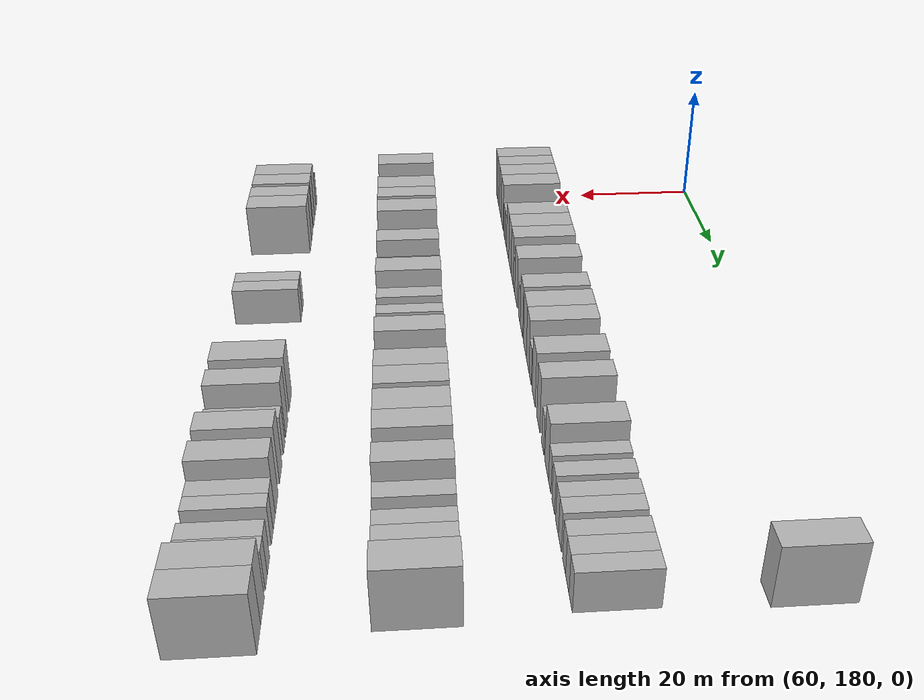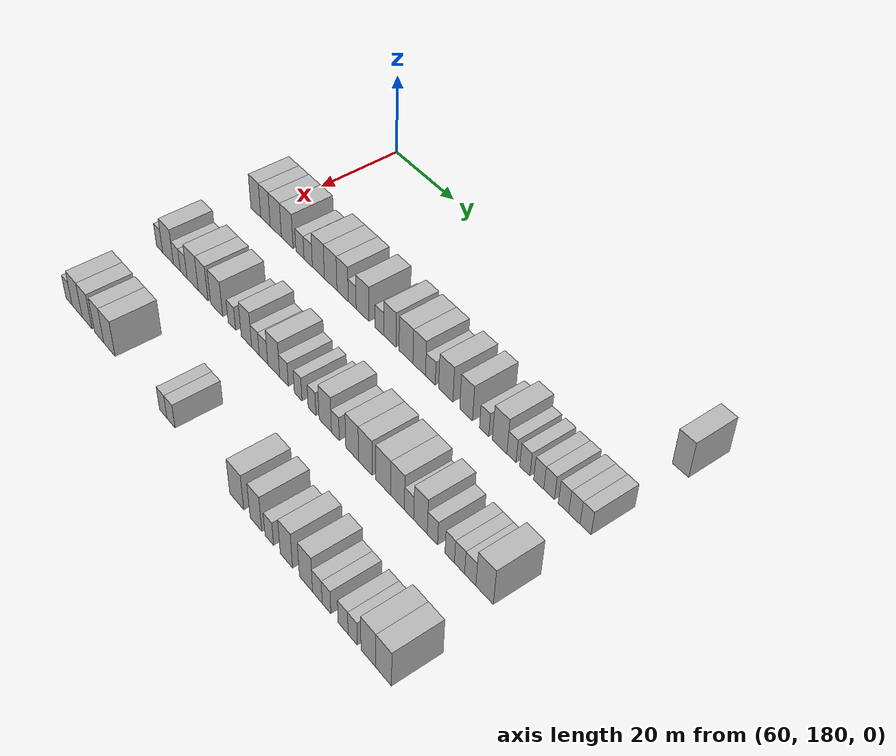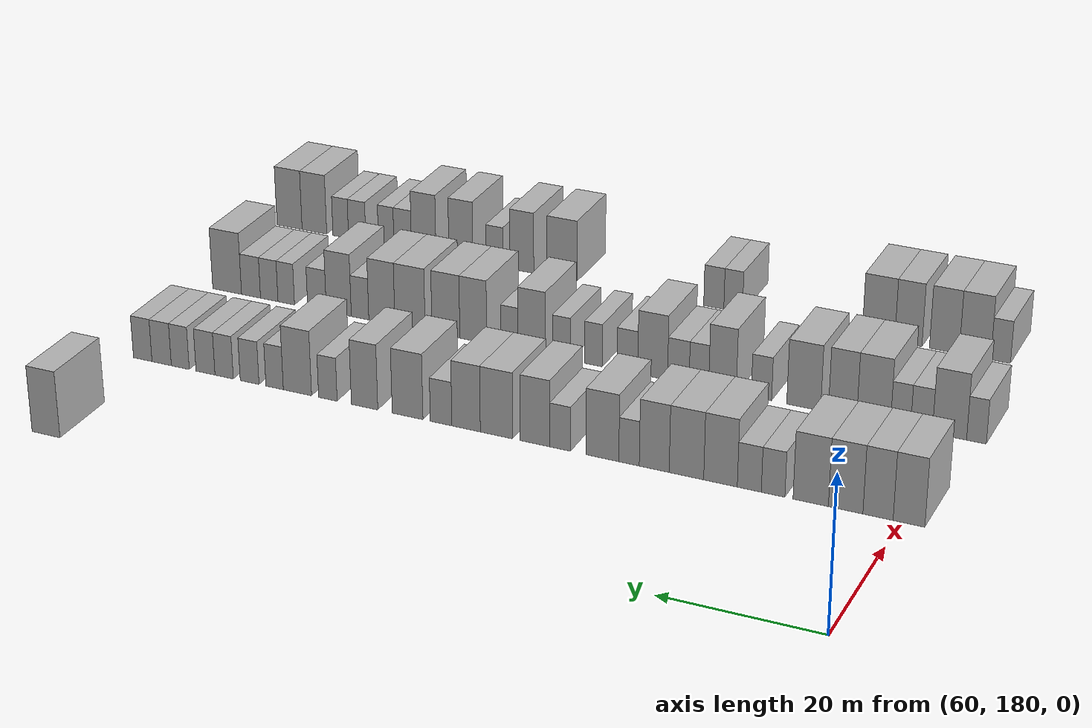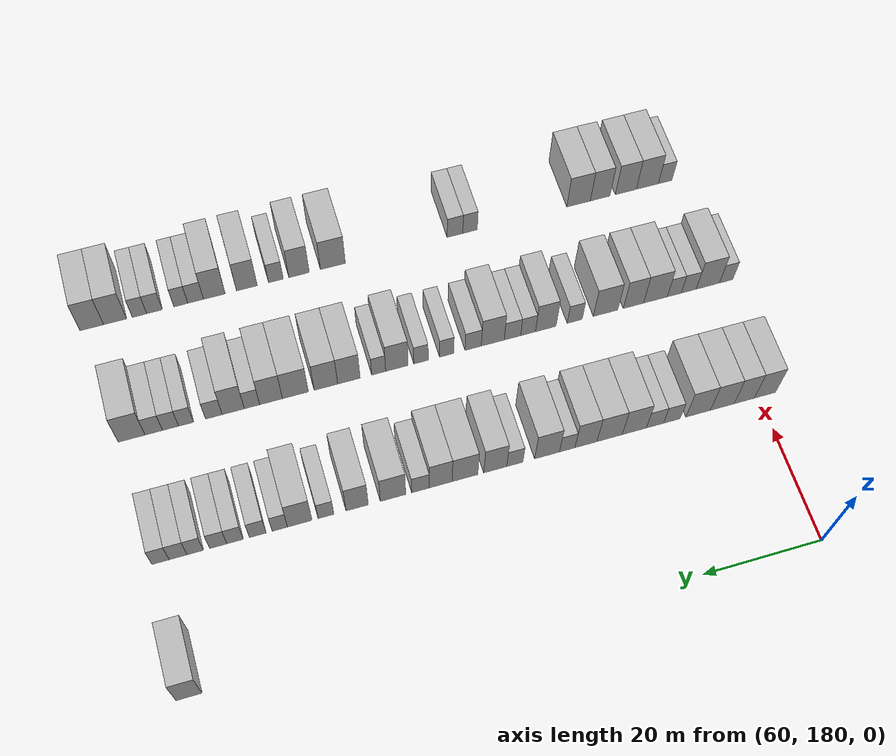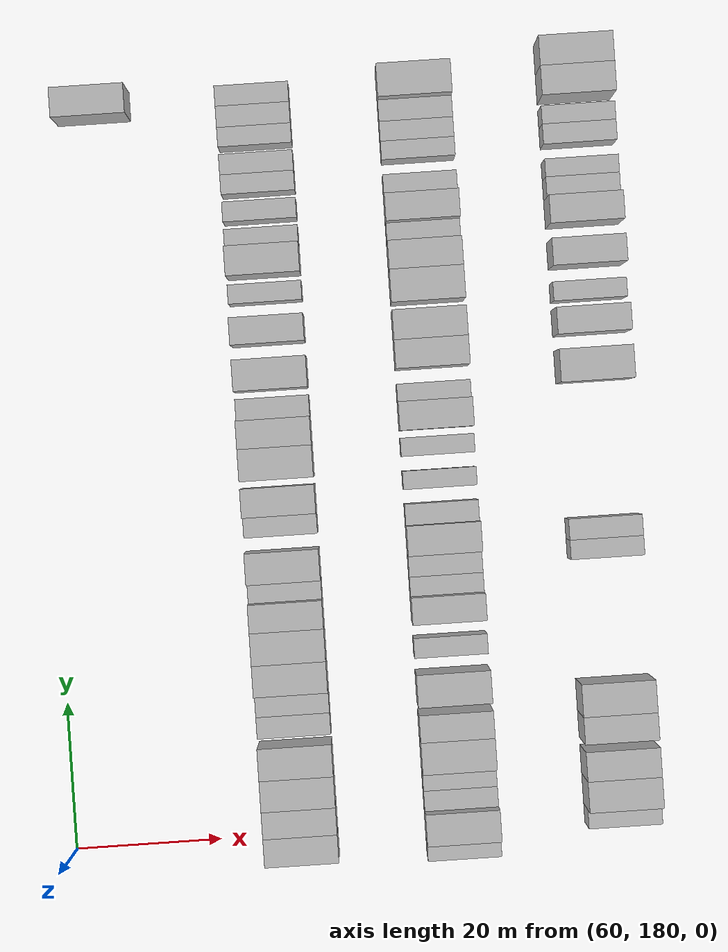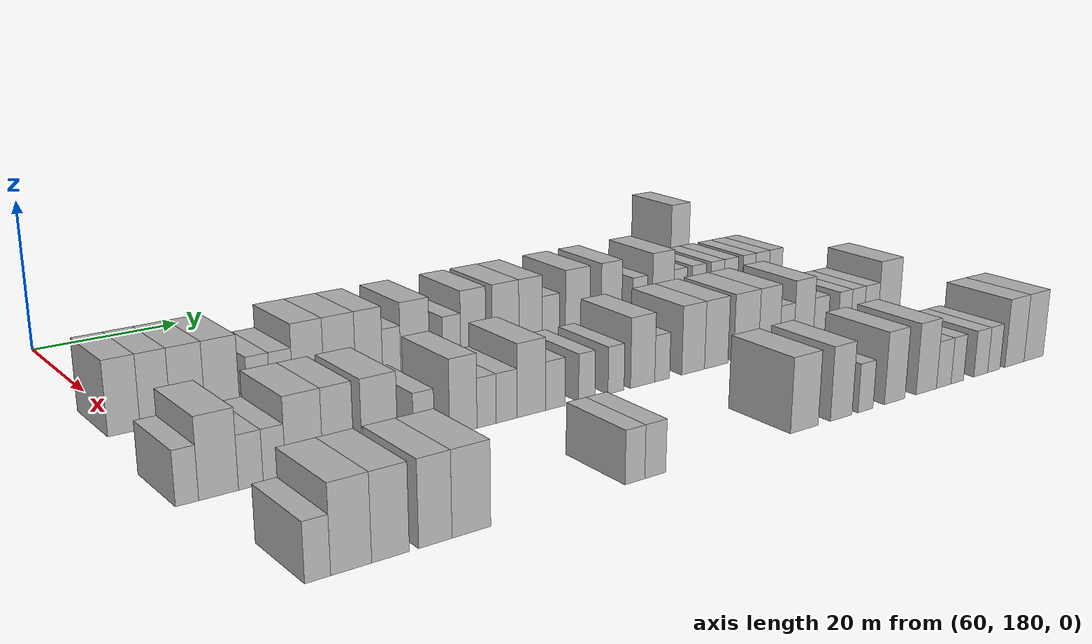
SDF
<sdf version="1.6">
 <world name="default">
  <model name="building_548">
   <static>1</static>
   <pose>69.0000 281.4334 0 0.000000 0.000000 0.000000</pose>
   <link name="link">
    <pose>0 0 4.50 0 0 0</pose>
    <collision name="collision"><geometry><box><size>10.0000 4.0031 9.0000</size></box></geometry></collision>
    <visual name="visual">
     <cast_shadows>0</cast_shadows>
     <geometry><box><size>10.0000 4.0031 9.0000</size></box></geometry>
     <material>
      <script>
       <uri>model://HANNAS_wall/materials/scripts</uri>
       <uri>model://HANNAS_wall/materials/textures</uri>
       <name>vrc/HANNAS_wall</name>
      </script>
     </material>
    </visual>
   </link>
  </model>
  <model name="building_706">
   <static>1</static>
   <pose>91.0000 179.0462 0 0.000000 0.000000 0.000000</pose>
   <link name="link">
    <pose>0 0 4.50 0 0 0</pose>
    <collision name="collision"><geometry><box><size>10.0000 3.7843 9.0000</size></box></geometry></collision>
    <visual name="visual">
     <cast_shadows>0</cast_shadows>
     <geometry><box><size>10.0000 3.7843 9.0000</size></box></geometry>
     <material>
      <script>
       <uri>model://HANNAS_wall/materials/scripts</uri>
       <uri>model://HANNAS_wall/materials/textures</uri>
       <name>vrc/HANNAS_wall</name>
      </script>
     </material>
    </visual>
   </link>
  </model>
  <model name="building_707">
   <static>1</static>
   <pose>91.0000 182.7528 0 0.000000 0.000000 0.000000</pose>
   <link name="link">
    <pose>0 0 4.50 0 0 0</pose>
    <collision name="collision"><geometry><box><size>10.0000 3.6289 9.0000</size></box></geometry></collision>
    <visual name="visual">
     <cast_shadows>0</cast_shadows>
     <geometry><box><size>10.0000 3.6289 9.0000</size></box></geometry>
     <material>
      <script>
       <uri>model://HANNAS_wall/materials/scripts</uri>
       <uri>model://HANNAS_wall/materials/textures</uri>
       <name>vrc/HANNAS_wall</name>
      </script>
     </material>
    </visual>
   </link>
  </model>
  <model name="building_708">
   <static>1</static>
   <pose>91.0000 186.6580 0 0.000000 0.000000 0.000000</pose>
   <link name="link">
    <pose>0 0 4.50 0 0 0</pose>
    <collision name="collision"><geometry><box><size>10.0000 4.1815 9.0000</size></box></geometry></collision>
    <visual name="visual">
     <cast_shadows>0</cast_shadows>
     <geometry><box><size>10.0000 4.1815 9.0000</size></box></geometry>
     <material>
      <script>
       <uri>model://HANNAS_wall/materials/scripts</uri>
       <uri>model://HANNAS_wall/materials/textures</uri>
       <name>vrc/HANNAS_wall</name>
      </script>
     </material>
    </visual>
   </link>
  </model>
  <model name="building_709">
   <static>1</static>
   <pose>91.0000 190.9124 0 0.000000 0.000000 0.000000</pose>
   <link name="link">
    <pose>0 0 4.50 0 0 0</pose>
    <collision name="collision"><geometry><box><size>10.0000 4.3273 9.0000</size></box></geometry></collision>
    <visual name="visual">
     <cast_shadows>0</cast_shadows>
     <geometry><box><size>10.0000 4.3273 9.0000</size></box></geometry>
     <material>
      <script>
       <uri>model://HANNAS_wall/materials/scripts</uri>
       <uri>model://HANNAS_wall/materials/textures</uri>
       <name>vrc/HANNAS_wall</name>
      </script>
     </material>
    </visual>
   </link>
  </model>
  <model name="building_710">
   <static>1</static>
   <pose>91.0000 195.5393 0 0.000000 0.000000 0.000000</pose>
   <link name="link">
    <pose>0 0 3.00 0 0 0</pose>
    <collision name="collision"><geometry><box><size>10.0000 2.9265 6.0000</size></box></geometry></collision>
    <visual name="visual">
     <cast_shadows>0</cast_shadows>
     <geometry><box><size>10.0000 2.9265 6.0000</size></box></geometry>
     <material>
      <script>
       <uri>model://HANNAS_wall/materials/scripts</uri>
       <uri>model://HANNAS_wall/materials/textures</uri>
       <name>vrc/HANNAS_wall</name>
      </script>
     </material>
    </visual>
   </link>
  </model>
  <model name="building_711">
   <static>1</static>
   <pose>91.0000 198.4975 0 0.000000 0.000000 0.000000</pose>
   <link name="link">
    <pose>0 0 3.00 0 0 0</pose>
    <collision name="collision"><geometry><box><size>10.0000 2.9899 6.0000</size></box></geometry></collision>
    <visual name="visual">
     <cast_shadows>0</cast_shadows>
     <geometry><box><size>10.0000 2.9899 6.0000</size></box></geometry>
     <material>
      <script>
       <uri>model://HANNAS_wall/materials/scripts</uri>
       <uri>model://HANNAS_wall/materials/textures</uri>
       <name>vrc/HANNAS_wall</name>
      </script>
     </material>
    </visual>
   </link>
  </model>
  <model name="building_712">
   <static>1</static>
   <pose>91.0000 202.1015 0 0.000000 0.000000 0.000000</pose>
   <link name="link">
    <pose>0 0 4.50 0 0 0</pose>
    <collision name="collision"><geometry><box><size>10.0000 4.2182 9.0000</size></box></geometry></collision>
    <visual name="visual">
     <cast_shadows>0</cast_shadows>
     <geometry><box><size>10.0000 4.2182 9.0000</size></box></geometry>
     <material>
      <script>
       <uri>model://HANNAS_wall/materials/scripts</uri>
       <uri>model://HANNAS_wall/materials/textures</uri>
       <name>vrc/HANNAS_wall</name>
      </script>
     </material>
    </visual>
   </link>
  </model>
  <model name="building_713">
   <static>1</static>
   <pose>91.0000 206.3991 0 0.000000 0.000000 0.000000</pose>
   <link name="link">
    <pose>0 0 4.50 0 0 0</pose>
    <collision name="collision"><geometry><box><size>10.0000 4.3770 9.0000</size></box></geometry></collision>
    <visual name="visual">
     <cast_shadows>0</cast_shadows>
     <geometry><box><size>10.0000 4.3770 9.0000</size></box></geometry>
     <material>
      <script>
       <uri>model://HANNAS_wall/materials/scripts</uri>
       <uri>model://HANNAS_wall/materials/textures</uri>
       <name>vrc/HANNAS_wall</name>
      </script>
     </material>
    </visual>
   </link>
  </model>
  <model name="building_714">
   <static>1</static>
   <pose>91.0000 210.5048 0 0.000000 0.000000 0.000000</pose>
   <link name="link">
    <pose>0 0 4.50 0 0 0</pose>
    <collision name="collision"><geometry><box><size>10.0000 3.8342 9.0000</size></box></geometry></collision>
    <visual name="visual">
     <cast_shadows>0</cast_shadows>
     <geometry><box><size>10.0000 3.8342 9.0000</size></box></geometry>
     <material>
      <script>
       <uri>model://HANNAS_wall/materials/scripts</uri>
       <uri>model://HANNAS_wall/materials/textures</uri>
       <name>vrc/HANNAS_wall</name>
      </script>
     </material>
    </visual>
   </link>
  </model>
  <model name="building_715">
   <static>1</static>
   <pose>91.0000 213.7409 0 0.000000 0.000000 0.000000</pose>
   <link name="link">
    <pose>0 0 3.00 0 0 0</pose>
    <collision name="collision"><geometry><box><size>10.0000 2.6380 6.0000</size></box></geometry></collision>
    <visual name="visual">
     <cast_shadows>0</cast_shadows>
     <geometry><box><size>10.0000 2.6380 6.0000</size></box></geometry>
     <material>
      <script>
       <uri>model://HANNAS_wall/materials/scripts</uri>
       <uri>model://HANNAS_wall/materials/textures</uri>
       <name>vrc/HANNAS_wall</name>
      </script>
     </material>
    </visual>
   </link>
  </model>
  <model name="building_716">
   <static>1</static>
   <pose>91.0000 217.1951 0 0.000000 0.000000 0.000000</pose>
   <link name="link">
    <pose>0 0 4.50 0 0 0</pose>
    <collision name="collision"><geometry><box><size>10.0000 4.2705 9.0000</size></box></geometry></collision>
    <visual name="visual">
     <cast_shadows>0</cast_shadows>
     <geometry><box><size>10.0000 4.2705 9.0000</size></box></geometry>
     <material>
      <script>
       <uri>model://HANNAS_wall/materials/scripts</uri>
       <uri>model://HANNAS_wall/materials/textures</uri>
       <name>vrc/HANNAS_wall</name>
      </script>
     </material>
    </visual>
   </link>
  </model>
  <model name="building_717">
   <static>1</static>
   <pose>91.0000 222.7116 0 0.000000 0.000000 0.000000</pose>
   <link name="link">
    <pose>0 0 3.00 0 0 0</pose>
    <collision name="collision"><geometry><box><size>10.0000 2.7625 6.0000</size></box></geometry></collision>
    <visual name="visual">
     <cast_shadows>0</cast_shadows>
     <geometry><box><size>10.0000 2.7625 6.0000</size></box></geometry>
     <material>
      <script>
       <uri>model://HANNAS_wall/materials/scripts</uri>
       <uri>model://HANNAS_wall/materials/textures</uri>
       <name>vrc/HANNAS_wall</name>
      </script>
     </material>
    </visual>
   </link>
  </model>
  <model name="building_718">
   <static>1</static>
   <pose>91.0000 226.0505 0 0.000000 0.000000 0.000000</pose>
   <link name="link">
    <pose>0 0 4.50 0 0 0</pose>
    <collision name="collision"><geometry><box><size>10.0000 3.9151 9.0000</size></box></geometry></collision>
    <visual name="visual">
     <cast_shadows>0</cast_shadows>
     <geometry><box><size>10.0000 3.9151 9.0000</size></box></geometry>
     <material>
      <script>
       <uri>model://HANNAS_wall/materials/scripts</uri>
       <uri>model://HANNAS_wall/materials/textures</uri>
       <name>vrc/HANNAS_wall</name>
      </script>
     </material>
    </visual>
   </link>
  </model>
  <model name="building_719">
   <static>1</static>
   <pose>91.0000 231.1759 0 0.000000 0.000000 0.000000</pose>
   <link name="link">
    <pose>0 0 4.50 0 0 0</pose>
    <collision name="collision"><geometry><box><size>10.0000 4.3357 9.0000</size></box></geometry></collision>
    <visual name="visual">
     <cast_shadows>0</cast_shadows>
     <geometry><box><size>10.0000 4.3357 9.0000</size></box></geometry>
     <material>
      <script>
       <uri>model://HANNAS_wall/materials/scripts</uri>
       <uri>model://HANNAS_wall/materials/textures</uri>
       <name>vrc/HANNAS_wall</name>
      </script>
     </material>
    </visual>
   </link>
  </model>
  <model name="building_720">
   <static>1</static>
   <pose>91.0000 235.2658 0 0.000000 0.000000 0.000000</pose>
   <link name="link">
    <pose>0 0 4.50 0 0 0</pose>
    <collision name="collision"><geometry><box><size>10.0000 3.8442 9.0000</size></box></geometry></collision>
    <visual name="visual">
     <cast_shadows>0</cast_shadows>
     <geometry><box><size>10.0000 3.8442 9.0000</size></box></geometry>
     <material>
      <script>
       <uri>model://HANNAS_wall/materials/scripts</uri>
       <uri>model://HANNAS_wall/materials/textures</uri>
       <name>vrc/HANNAS_wall</name>
      </script>
     </material>
    </visual>
   </link>
  </model>
  <model name="building_721">
   <static>1</static>
   <pose>91.0000 238.6625 0 0.000000 0.000000 0.000000</pose>
   <link name="link">
    <pose>0 0 3.00 0 0 0</pose>
    <collision name="collision"><geometry><box><size>10.0000 2.9491 6.0000</size></box></geometry></collision>
    <visual name="visual">
     <cast_shadows>0</cast_shadows>
     <geometry><box><size>10.0000 2.9491 6.0000</size></box></geometry>
     <material>
      <script>
       <uri>model://HANNAS_wall/materials/scripts</uri>
       <uri>model://HANNAS_wall/materials/textures</uri>
       <name>vrc/HANNAS_wall</name>
      </script>
     </material>
    </visual>
   </link>
  </model>
  <model name="building_722">
   <static>1</static>
   <pose>91.0000 243.2564 0 0.000000 0.000000 0.000000</pose>
   <link name="link">
    <pose>0 0 4.50 0 0 0</pose>
    <collision name="collision"><geometry><box><size>10.0000 4.2387 9.0000</size></box></geometry></collision>
    <visual name="visual">
     <cast_shadows>0</cast_shadows>
     <geometry><box><size>10.0000 4.2387 9.0000</size></box></geometry>
     <material>
      <script>
       <uri>model://HANNAS_wall/materials/scripts</uri>
       <uri>model://HANNAS_wall/materials/textures</uri>
       <name>vrc/HANNAS_wall</name>
      </script>
     </material>
    </visual>
   </link>
  </model>
  <model name="building_723">
   <static>1</static>
   <pose>91.0000 249.2198 0 0.000000 0.000000 0.000000</pose>
   <link name="link">
    <pose>0 0 4.50 0 0 0</pose>
    <collision name="collision"><geometry><box><size>10.0000 3.6882 9.0000</size></box></geometry></collision>
    <visual name="visual">
     <cast_shadows>0</cast_shadows>
     <geometry><box><size>10.0000 3.6882 9.0000</size></box></geometry>
     <material>
      <script>
       <uri>model://HANNAS_wall/materials/scripts</uri>
       <uri>model://HANNAS_wall/materials/textures</uri>
       <name>vrc/HANNAS_wall</name>
      </script>
     </material>
    </visual>
   </link>
  </model>
  <model name="building_724">
   <static>1</static>
   <pose>91.0000 254.3691 0 0.000000 0.000000 0.000000</pose>
   <link name="link">
    <pose>0 0 3.00 0 0 0</pose>
    <collision name="collision"><geometry><box><size>10.0000 2.6104 6.0000</size></box></geometry></collision>
    <visual name="visual">
     <cast_shadows>0</cast_shadows>
     <geometry><box><size>10.0000 2.6104 6.0000</size></box></geometry>
     <material>
      <script>
       <uri>model://HANNAS_wall/materials/scripts</uri>
       <uri>model://HANNAS_wall/materials/textures</uri>
       <name>vrc/HANNAS_wall</name>
      </script>
     </material>
    </visual>
   </link>
  </model>
  <model name="building_725">
   <static>1</static>
   <pose>91.0000 258.6878 0 0.000000 0.000000 0.000000</pose>
   <link name="link">
    <pose>0 0 4.50 0 0 0</pose>
    <collision name="collision"><geometry><box><size>10.0000 4.0270 9.0000</size></box></geometry></collision>
    <visual name="visual">
     <cast_shadows>0</cast_shadows>
     <geometry><box><size>10.0000 4.0270 9.0000</size></box></geometry>
     <material>
      <script>
       <uri>model://HANNAS_wall/materials/scripts</uri>
       <uri>model://HANNAS_wall/materials/textures</uri>
       <name>vrc/HANNAS_wall</name>
      </script>
     </material>
    </visual>
   </link>
  </model>
  <model name="building_726">
   <static>1</static>
   <pose>91.0000 261.9492 0 0.000000 0.000000 0.000000</pose>
   <link name="link">
    <pose>0 0 3.00 0 0 0</pose>
    <collision name="collision"><geometry><box><size>10.0000 2.4957 6.0000</size></box></geometry></collision>
    <visual name="visual">
     <cast_shadows>0</cast_shadows>
     <geometry><box><size>10.0000 2.4957 6.0000</size></box></geometry>
     <material>
      <script>
       <uri>model://HANNAS_wall/materials/scripts</uri>
       <uri>model://HANNAS_wall/materials/textures</uri>
       <name>vrc/HANNAS_wall</name>
      </script>
     </material>
    </visual>
   </link>
  </model>
  <model name="building_727">
   <static>1</static>
   <pose>91.0000 265.5557 0 0.000000 0.000000 0.000000</pose>
   <link name="link">
    <pose>0 0 3.00 0 0 0</pose>
    <collision name="collision"><geometry><box><size>10.0000 2.7173 6.0000</size></box></geometry></collision>
    <visual name="visual">
     <cast_shadows>0</cast_shadows>
     <geometry><box><size>10.0000 2.7173 6.0000</size></box></geometry>
     <material>
      <script>
       <uri>model://HANNAS_wall/materials/scripts</uri>
       <uri>model://HANNAS_wall/materials/textures</uri>
       <name>vrc/HANNAS_wall</name>
      </script>
     </material>
    </visual>
   </link>
  </model>
  <model name="building_728">
   <static>1</static>
   <pose>91.0000 269.2514 0 0.000000 0.000000 0.000000</pose>
   <link name="link">
    <pose>0 0 3.00 0 0 0</pose>
    <collision name="collision"><geometry><box><size>10.0000 2.6743 6.0000</size></box></geometry></collision>
    <visual name="visual">
     <cast_shadows>0</cast_shadows>
     <geometry><box><size>10.0000 2.6743 6.0000</size></box></geometry>
     <material>
      <script>
       <uri>model://HANNAS_wall/materials/scripts</uri>
       <uri>model://HANNAS_wall/materials/textures</uri>
       <name>vrc/HANNAS_wall</name>
      </script>
     </material>
    </visual>
   </link>
  </model>
  <model name="building_729">
   <static>1</static>
   <pose>91.0000 271.9757 0 0.000000 0.000000 0.000000</pose>
   <link name="link">
    <pose>0 0 3.00 0 0 0</pose>
    <collision name="collision"><geometry><box><size>10.0000 2.7742 6.0000</size></box></geometry></collision>
    <visual name="visual">
     <cast_shadows>0</cast_shadows>
     <geometry><box><size>10.0000 2.7742 6.0000</size></box></geometry>
     <material>
      <script>
       <uri>model://HANNAS_wall/materials/scripts</uri>
       <uri>model://HANNAS_wall/materials/textures</uri>
       <name>vrc/HANNAS_wall</name>
      </script>
     </material>
    </visual>
   </link>
  </model>
  <model name="building_730">
   <static>1</static>
   <pose>91.0000 275.6861 0 0.000000 0.000000 0.000000</pose>
   <link name="link">
    <pose>0 0 3.00 0 0 0</pose>
    <collision name="collision"><geometry><box><size>10.0000 2.6464 6.0000</size></box></geometry></collision>
    <visual name="visual">
     <cast_shadows>0</cast_shadows>
     <geometry><box><size>10.0000 2.6464 6.0000</size></box></geometry>
     <material>
      <script>
       <uri>model://HANNAS_wall/materials/scripts</uri>
       <uri>model://HANNAS_wall/materials/textures</uri>
       <name>vrc/HANNAS_wall</name>
      </script>
     </material>
    </visual>
   </link>
  </model>
  <model name="building_731">
   <static>1</static>
   <pose>91.0000 278.4470 0 0.000000 0.000000 0.000000</pose>
   <link name="link">
    <pose>0 0 3.00 0 0 0</pose>
    <collision name="collision"><geometry><box><size>10.0000 2.8754 6.0000</size></box></geometry></collision>
    <visual name="visual">
     <cast_shadows>0</cast_shadows>
     <geometry><box><size>10.0000 2.8754 6.0000</size></box></geometry>
     <material>
      <script>
       <uri>model://HANNAS_wall/materials/scripts</uri>
       <uri>model://HANNAS_wall/materials/textures</uri>
       <name>vrc/HANNAS_wall</name>
      </script>
     </material>
    </visual>
   </link>
  </model>
  <model name="building_732">
   <static>1</static>
   <pose>91.0000 281.2652 0 0.000000 0.000000 0.000000</pose>
   <link name="link">
    <pose>0 0 3.00 0 0 0</pose>
    <collision name="collision"><geometry><box><size>10.0000 2.7609 6.0000</size></box></geometry></collision>
    <visual name="visual">
     <cast_shadows>0</cast_shadows>
     <geometry><box><size>10.0000 2.7609 6.0000</size></box></geometry>
     <material>
      <script>
       <uri>model://HANNAS_wall/materials/scripts</uri>
       <uri>model://HANNAS_wall/materials/textures</uri>
       <name>vrc/HANNAS_wall</name>
      </script>
     </material>
    </visual>
   </link>
  </model>
  <model name="building_879">
   <static>1</static>
   <pose>113.0000 177.2772 0 0.000000 0.000000 0.000000</pose>
   <link name="link">
    <pose>0 0 3.00 0 0 0</pose>
    <collision name="collision"><geometry><box><size>10.0000 2.4625 6.0000</size></box></geometry></collision>
    <visual name="visual">
     <cast_shadows>0</cast_shadows>
     <geometry><box><size>10.0000 2.4625 6.0000</size></box></geometry>
     <material>
      <script>
       <uri>model://HANNAS_wall/materials/scripts</uri>
       <uri>model://HANNAS_wall/materials/textures</uri>
       <name>vrc/HANNAS_wall</name>
      </script>
     </material>
    </visual>
   </link>
  </model>
  <model name="building_880">
   <static>1</static>
   <pose>113.0000 180.6583 0 0.000000 0.000000 0.000000</pose>
   <link name="link">
    <pose>0 0 4.50 0 0 0</pose>
    <collision name="collision"><geometry><box><size>10.0000 4.2997 9.0000</size></box></geometry></collision>
    <visual name="visual">
     <cast_shadows>0</cast_shadows>
     <geometry><box><size>10.0000 4.2997 9.0000</size></box></geometry>
     <material>
      <script>
       <uri>model://HANNAS_wall/materials/scripts</uri>
       <uri>model://HANNAS_wall/materials/textures</uri>
       <name>vrc/HANNAS_wall</name>
      </script>
     </material>
    </visual>
   </link>
  </model>
  <model name="building_881">
   <static>1</static>
   <pose>113.0000 184.1854 0 0.000000 0.000000 0.000000</pose>
   <link name="link">
    <pose>0 0 3.00 0 0 0</pose>
    <collision name="collision"><geometry><box><size>10.0000 2.7545 6.0000</size></box></geometry></collision>
    <visual name="visual">
     <cast_shadows>0</cast_shadows>
     <geometry><box><size>10.0000 2.7545 6.0000</size></box></geometry>
     <material>
      <script>
       <uri>model://HANNAS_wall/materials/scripts</uri>
       <uri>model://HANNAS_wall/materials/textures</uri>
       <name>vrc/HANNAS_wall</name>
      </script>
     </material>
    </visual>
   </link>
  </model>
  <model name="building_882">
   <static>1</static>
   <pose>113.0000 186.8388 0 0.000000 0.000000 0.000000</pose>
   <link name="link">
    <pose>0 0 3.00 0 0 0</pose>
    <collision name="collision"><geometry><box><size>10.0000 2.5522 6.0000</size></box></geometry></collision>
    <visual name="visual">
     <cast_shadows>0</cast_shadows>
     <geometry><box><size>10.0000 2.5522 6.0000</size></box></geometry>
     <material>
      <script>
       <uri>model://HANNAS_wall/materials/scripts</uri>
       <uri>model://HANNAS_wall/materials/textures</uri>
       <name>vrc/HANNAS_wall</name>
      </script>
     </material>
    </visual>
   </link>
  </model>
  <model name="building_883">
   <static>1</static>
   <pose>113.0000 190.2776 0 0.000000 0.000000 0.000000</pose>
   <link name="link">
    <pose>0 0 4.50 0 0 0</pose>
    <collision name="collision"><geometry><box><size>10.0000 4.3255 9.0000</size></box></geometry></collision>
    <visual name="visual">
     <cast_shadows>0</cast_shadows>
     <geometry><box><size>10.0000 4.3255 9.0000</size></box></geometry>
     <material>
      <script>
       <uri>model://HANNAS_wall/materials/scripts</uri>
       <uri>model://HANNAS_wall/materials/textures</uri>
       <name>vrc/HANNAS_wall</name>
      </script>
     </material>
    </visual>
   </link>
  </model>
  <model name="building_884">
   <static>1</static>
   <pose>113.0000 194.2833 0 0.000000 0.000000 0.000000</pose>
   <link name="link">
    <pose>0 0 4.50 0 0 0</pose>
    <collision name="collision"><geometry><box><size>10.0000 3.6858 9.0000</size></box></geometry></collision>
    <visual name="visual">
     <cast_shadows>0</cast_shadows>
     <geometry><box><size>10.0000 3.6858 9.0000</size></box></geometry>
     <material>
      <script>
       <uri>model://HANNAS_wall/materials/scripts</uri>
       <uri>model://HANNAS_wall/materials/textures</uri>
       <name>vrc/HANNAS_wall</name>
      </script>
     </material>
    </visual>
   </link>
  </model>
  <model name="building_885">
   <static>1</static>
   <pose>113.0000 199.3427 0 0.000000 0.000000 0.000000</pose>
   <link name="link">
    <pose>0 0 4.50 0 0 0</pose>
    <collision name="collision"><geometry><box><size>10.0000 4.4330 9.0000</size></box></geometry></collision>
    <visual name="visual">
     <cast_shadows>0</cast_shadows>
     <geometry><box><size>10.0000 4.4330 9.0000</size></box></geometry>
     <material>
      <script>
       <uri>model://HANNAS_wall/materials/scripts</uri>
       <uri>model://HANNAS_wall/materials/textures</uri>
       <name>vrc/HANNAS_wall</name>
      </script>
     </material>
    </visual>
   </link>
  </model>
  <model name="building_886">
   <static>1</static>
   <pose>113.0000 204.9077 0 0.000000 0.000000 0.000000</pose>
   <link name="link">
    <pose>0 0 3.00 0 0 0</pose>
    <collision name="collision"><geometry><box><size>10.0000 2.6970 6.0000</size></box></geometry></collision>
    <visual name="visual">
     <cast_shadows>0</cast_shadows>
     <geometry><box><size>10.0000 2.6970 6.0000</size></box></geometry>
     <material>
      <script>
       <uri>model://HANNAS_wall/materials/scripts</uri>
       <uri>model://HANNAS_wall/materials/textures</uri>
       <name>vrc/HANNAS_wall</name>
      </script>
     </material>
    </visual>
   </link>
  </model>
  <model name="building_887">
   <static>1</static>
   <pose>113.0000 210.0981 0 0.000000 0.000000 0.000000</pose>
   <link name="link">
    <pose>0 0 4.50 0 0 0</pose>
    <collision name="collision"><geometry><box><size>10.0000 3.6836 9.0000</size></box></geometry></collision>
    <visual name="visual">
     <cast_shadows>0</cast_shadows>
     <geometry><box><size>10.0000 3.6836 9.0000</size></box></geometry>
     <material>
      <script>
       <uri>model://HANNAS_wall/materials/scripts</uri>
       <uri>model://HANNAS_wall/materials/textures</uri>
       <name>vrc/HANNAS_wall</name>
      </script>
     </material>
    </visual>
   </link>
  </model>
  <model name="building_888">
   <static>1</static>
   <pose>113.0000 213.2574 0 0.000000 0.000000 0.000000</pose>
   <link name="link">
    <pose>0 0 3.00 0 0 0</pose>
    <collision name="collision"><geometry><box><size>10.0000 2.6350 6.0000</size></box></geometry></collision>
    <visual name="visual">
     <cast_shadows>0</cast_shadows>
     <geometry><box><size>10.0000 2.6350 6.0000</size></box></geometry>
     <material>
      <script>
       <uri>model://HANNAS_wall/materials/scripts</uri>
       <uri>model://HANNAS_wall/materials/textures</uri>
       <name>vrc/HANNAS_wall</name>
      </script>
     </material>
    </visual>
   </link>
  </model>
  <model name="building_889">
   <static>1</static>
   <pose>113.0000 216.0415 0 0.000000 0.000000 0.000000</pose>
   <link name="link">
    <pose>0 0 3.00 0 0 0</pose>
    <collision name="collision"><geometry><box><size>10.0000 2.9331 6.0000</size></box></geometry></collision>
    <visual name="visual">
     <cast_shadows>0</cast_shadows>
     <geometry><box><size>10.0000 2.9331 6.0000</size></box></geometry>
     <material>
      <script>
       <uri>model://HANNAS_wall/materials/scripts</uri>
       <uri>model://HANNAS_wall/materials/textures</uri>
       <name>vrc/HANNAS_wall</name>
      </script>
     </material>
    </visual>
   </link>
  </model>
  <model name="building_890">
   <static>1</static>
   <pose>113.0000 219.5423 0 0.000000 0.000000 0.000000</pose>
   <link name="link">
    <pose>0 0 4.50 0 0 0</pose>
    <collision name="collision"><geometry><box><size>10.0000 4.0685 9.0000</size></box></geometry></collision>
    <visual name="visual">
     <cast_shadows>0</cast_shadows>
     <geometry><box><size>10.0000 4.0685 9.0000</size></box></geometry>
     <material>
      <script>
       <uri>model://HANNAS_wall/materials/scripts</uri>
       <uri>model://HANNAS_wall/materials/textures</uri>
       <name>vrc/HANNAS_wall</name>
      </script>
     </material>
    </visual>
   </link>
  </model>
  <model name="building_891">
   <static>1</static>
   <pose>113.0000 223.0124 0 0.000000 0.000000 0.000000</pose>
   <link name="link">
    <pose>0 0 3.00 0 0 0</pose>
    <collision name="collision"><geometry><box><size>10.0000 2.8717 6.0000</size></box></geometry></collision>
    <visual name="visual">
     <cast_shadows>0</cast_shadows>
     <geometry><box><size>10.0000 2.8717 6.0000</size></box></geometry>
     <material>
      <script>
       <uri>model://HANNAS_wall/materials/scripts</uri>
       <uri>model://HANNAS_wall/materials/textures</uri>
       <name>vrc/HANNAS_wall</name>
      </script>
     </material>
    </visual>
   </link>
  </model>
  <model name="building_892">
   <static>1</static>
   <pose>113.0000 227.6900 0 0.000000 0.000000 0.000000</pose>
   <link name="link">
    <pose>0 0 3.00 0 0 0</pose>
    <collision name="collision"><geometry><box><size>10.0000 2.4836 6.0000</size></box></geometry></collision>
    <visual name="visual">
     <cast_shadows>0</cast_shadows>
     <geometry><box><size>10.0000 2.4836 6.0000</size></box></geometry>
     <material>
      <script>
       <uri>model://HANNAS_wall/materials/scripts</uri>
       <uri>model://HANNAS_wall/materials/textures</uri>
       <name>vrc/HANNAS_wall</name>
      </script>
     </material>
    </visual>
   </link>
  </model>
  <model name="building_893">
   <static>1</static>
   <pose>113.0000 232.1852 0 0.000000 0.000000 0.000000</pose>
   <link name="link">
    <pose>0 0 3.00 0 0 0</pose>
    <collision name="collision"><geometry><box><size>10.0000 2.5067 6.0000</size></box></geometry></collision>
    <visual name="visual">
     <cast_shadows>0</cast_shadows>
     <geometry><box><size>10.0000 2.5067 6.0000</size></box></geometry>
     <material>
      <script>
       <uri>model://HANNAS_wall/materials/scripts</uri>
       <uri>model://HANNAS_wall/materials/textures</uri>
       <name>vrc/HANNAS_wall</name>
      </script>
     </material>
    </visual>
   </link>
  </model>
  <model name="building_894">
   <static>1</static>
   <pose>113.0000 236.3847 0 0.000000 0.000000 0.000000</pose>
   <link name="link">
    <pose>0 0 4.50 0 0 0</pose>
    <collision name="collision"><geometry><box><size>10.0000 3.8923 9.0000</size></box></geometry></collision>
    <visual name="visual">
     <cast_shadows>0</cast_shadows>
     <geometry><box><size>10.0000 3.8923 9.0000</size></box></geometry>
     <material>
      <script>
       <uri>model://HANNAS_wall/materials/scripts</uri>
       <uri>model://HANNAS_wall/materials/textures</uri>
       <name>vrc/HANNAS_wall</name>
      </script>
     </material>
    </visual>
   </link>
  </model>
  <model name="building_895">
   <static>1</static>
   <pose>113.0000 239.5464 0 0.000000 0.000000 0.000000</pose>
   <link name="link">
    <pose>0 0 3.00 0 0 0</pose>
    <collision name="collision"><geometry><box><size>10.0000 2.4310 6.0000</size></box></geometry></collision>
    <visual name="visual">
     <cast_shadows>0</cast_shadows>
     <geometry><box><size>10.0000 2.4310 6.0000</size></box></geometry>
     <material>
      <script>
       <uri>model://HANNAS_wall/materials/scripts</uri>
       <uri>model://HANNAS_wall/materials/textures</uri>
       <name>vrc/HANNAS_wall</name>
      </script>
     </material>
    </visual>
   </link>
  </model>
  <model name="building_896">
   <static>1</static>
   <pose>113.0000 244.6983 0 0.000000 0.000000 0.000000</pose>
   <link name="link">
    <pose>0 0 4.50 0 0 0</pose>
    <collision name="collision"><geometry><box><size>10.0000 3.8728 9.0000</size></box></geometry></collision>
    <visual name="visual">
     <cast_shadows>0</cast_shadows>
     <geometry><box><size>10.0000 3.8728 9.0000</size></box></geometry>
     <material>
      <script>
       <uri>model://HANNAS_wall/materials/scripts</uri>
       <uri>model://HANNAS_wall/materials/textures</uri>
       <name>vrc/HANNAS_wall</name>
      </script>
     </material>
    </visual>
   </link>
  </model>
  <model name="building_897">
   <static>1</static>
   <pose>113.0000 248.6568 0 0.000000 0.000000 0.000000</pose>
   <link name="link">
    <pose>0 0 4.50 0 0 0</pose>
    <collision name="collision"><geometry><box><size>10.0000 4.0442 9.0000</size></box></geometry></collision>
    <visual name="visual">
     <cast_shadows>0</cast_shadows>
     <geometry><box><size>10.0000 4.0442 9.0000</size></box></geometry>
     <material>
      <script>
       <uri>model://HANNAS_wall/materials/scripts</uri>
       <uri>model://HANNAS_wall/materials/textures</uri>
       <name>vrc/HANNAS_wall</name>
      </script>
     </material>
    </visual>
   </link>
  </model>
  <model name="building_898">
   <static>1</static>
   <pose>113.0000 253.8978 0 0.000000 0.000000 0.000000</pose>
   <link name="link">
    <pose>0 0 4.50 0 0 0</pose>
    <collision name="collision"><geometry><box><size>10.0000 4.4377 9.0000</size></box></geometry></collision>
    <visual name="visual">
     <cast_shadows>0</cast_shadows>
     <geometry><box><size>10.0000 4.4377 9.0000</size></box></geometry>
     <material>
      <script>
       <uri>model://HANNAS_wall/materials/scripts</uri>
       <uri>model://HANNAS_wall/materials/textures</uri>
       <name>vrc/HANNAS_wall</name>
      </script>
     </material>
    </visual>
   </link>
  </model>
  <model name="building_899">
   <static>1</static>
   <pose>113.0000 258.0524 0 0.000000 0.000000 0.000000</pose>
   <link name="link">
    <pose>0 0 4.50 0 0 0</pose>
    <collision name="collision"><geometry><box><size>10.0000 3.8715 9.0000</size></box></geometry></collision>
    <visual name="visual">
     <cast_shadows>0</cast_shadows>
     <geometry><box><size>10.0000 3.8715 9.0000</size></box></geometry>
     <material>
      <script>
       <uri>model://HANNAS_wall/materials/scripts</uri>
       <uri>model://HANNAS_wall/materials/textures</uri>
       <name>vrc/HANNAS_wall</name>
      </script>
     </material>
    </visual>
   </link>
  </model>
  <model name="building_900">
   <static>1</static>
   <pose>113.0000 261.2950 0 0.000000 0.000000 0.000000</pose>
   <link name="link">
    <pose>0 0 3.00 0 0 0</pose>
    <collision name="collision"><geometry><box><size>10.0000 2.6135 6.0000</size></box></geometry></collision>
    <visual name="visual">
     <cast_shadows>0</cast_shadows>
     <geometry><box><size>10.0000 2.6135 6.0000</size></box></geometry>
     <material>
      <script>
       <uri>model://HANNAS_wall/materials/scripts</uri>
       <uri>model://HANNAS_wall/materials/textures</uri>
       <name>vrc/HANNAS_wall</name>
      </script>
     </material>
    </visual>
   </link>
  </model>
  <model name="building_901">
   <static>1</static>
   <pose>113.0000 264.4745 0 0.000000 0.000000 0.000000</pose>
   <link name="link">
    <pose>0 0 4.50 0 0 0</pose>
    <collision name="collision"><geometry><box><size>10.0000 3.7455 9.0000</size></box></geometry></collision>
    <visual name="visual">
     <cast_shadows>0</cast_shadows>
     <geometry><box><size>10.0000 3.7455 9.0000</size></box></geometry>
     <material>
      <script>
       <uri>model://HANNAS_wall/materials/scripts</uri>
       <uri>model://HANNAS_wall/materials/textures</uri>
       <name>vrc/HANNAS_wall</name>
      </script>
     </material>
    </visual>
   </link>
  </model>
  <model name="building_902">
   <static>1</static>
   <pose>113.0000 267.7563 0 0.000000 0.000000 0.000000</pose>
   <link name="link">
    <pose>0 0 3.00 0 0 0</pose>
    <collision name="collision"><geometry><box><size>10.0000 2.8183 6.0000</size></box></geometry></collision>
    <visual name="visual">
     <cast_shadows>0</cast_shadows>
     <geometry><box><size>10.0000 2.8183 6.0000</size></box></geometry>
     <material>
      <script>
       <uri>model://HANNAS_wall/materials/scripts</uri>
       <uri>model://HANNAS_wall/materials/textures</uri>
       <name>vrc/HANNAS_wall</name>
      </script>
     </material>
    </visual>
   </link>
  </model>
  <model name="building_903">
   <static>1</static>
   <pose>113.0000 272.4264 0 0.000000 0.000000 0.000000</pose>
   <link name="link">
    <pose>0 0 3.00 0 0 0</pose>
    <collision name="collision"><geometry><box><size>10.0000 2.5217 6.0000</size></box></geometry></collision>
    <visual name="visual">
     <cast_shadows>0</cast_shadows>
     <geometry><box><size>10.0000 2.5217 6.0000</size></box></geometry>
     <material>
      <script>
       <uri>model://HANNAS_wall/materials/scripts</uri>
       <uri>model://HANNAS_wall/materials/textures</uri>
       <name>vrc/HANNAS_wall</name>
      </script>
     </material>
    </visual>
   </link>
  </model>
  <model name="building_904">
   <static>1</static>
   <pose>113.0000 275.0280 0 0.000000 0.000000 0.000000</pose>
   <link name="link">
    <pose>0 0 3.00 0 0 0</pose>
    <collision name="collision"><geometry><box><size>10.0000 2.6815 6.0000</size></box></geometry></collision>
    <visual name="visual">
     <cast_shadows>0</cast_shadows>
     <geometry><box><size>10.0000 2.6815 6.0000</size></box></geometry>
     <material>
      <script>
       <uri>model://HANNAS_wall/materials/scripts</uri>
       <uri>model://HANNAS_wall/materials/textures</uri>
       <name>vrc/HANNAS_wall</name>
      </script>
     </material>
    </visual>
   </link>
  </model>
  <model name="building_905">
   <static>1</static>
   <pose>113.0000 277.8272 0 0.000000 0.000000 0.000000</pose>
   <link name="link">
    <pose>0 0 3.00 0 0 0</pose>
    <collision name="collision"><geometry><box><size>10.0000 2.9170 6.0000</size></box></geometry></collision>
    <visual name="visual">
     <cast_shadows>0</cast_shadows>
     <geometry><box><size>10.0000 2.9170 6.0000</size></box></geometry>
     <material>
      <script>
       <uri>model://HANNAS_wall/materials/scripts</uri>
       <uri>model://HANNAS_wall/materials/textures</uri>
       <name>vrc/HANNAS_wall</name>
      </script>
     </material>
    </visual>
   </link>
  </model>
  <model name="building_906">
   <static>1</static>
   <pose>113.0000 281.5192 0 0.000000 0.000000 0.000000</pose>
   <link name="link">
    <pose>0 0 4.50 0 0 0</pose>
    <collision name="collision"><geometry><box><size>10.0000 4.4670 9.0000</size></box></geometry></collision>
    <visual name="visual">
     <cast_shadows>0</cast_shadows>
     <geometry><box><size>10.0000 4.4670 9.0000</size></box></geometry>
     <material>
      <script>
       <uri>model://HANNAS_wall/materials/scripts</uri>
       <uri>model://HANNAS_wall/materials/textures</uri>
       <name>vrc/HANNAS_wall</name>
      </script>
     </material>
    </visual>
   </link>
  </model>
  <model name="building_1070">
   <static>1</static>
   <pose>135.0000 180.2786 0 0.000000 0.000000 0.000000</pose>
   <link name="link">
    <pose>0 0 3.00 0 0 0</pose>
    <collision name="collision"><geometry><box><size>10.0000 2.5892 6.0000</size></box></geometry></collision>
    <visual name="visual">
     <cast_shadows>0</cast_shadows>
     <geometry><box><size>10.0000 2.5892 6.0000</size></box></geometry>
     <material>
      <script>
       <uri>model://HANNAS_wall/materials/scripts</uri>
       <uri>model://HANNAS_wall/materials/textures</uri>
       <name>vrc/HANNAS_wall</name>
      </script>
     </material>
    </visual>
   </link>
  </model>
  <model name="building_1071">
   <static>1</static>
   <pose>135.0000 183.6655 0 0.000000 0.000000 0.000000</pose>
   <link name="link">
    <pose>0 0 4.50 0 0 0</pose>
    <collision name="collision"><geometry><box><size>10.0000 4.1845 9.0000</size></box></geometry></collision>
    <visual name="visual">
     <cast_shadows>0</cast_shadows>
     <geometry><box><size>10.0000 4.1845 9.0000</size></box></geometry>
     <material>
      <script>
       <uri>model://HANNAS_wall/materials/scripts</uri>
       <uri>model://HANNAS_wall/materials/textures</uri>
       <name>vrc/HANNAS_wall</name>
      </script>
     </material>
    </visual>
   </link>
  </model>
  <model name="building_1072">
   <static>1</static>
   <pose>135.0000 187.7479 0 0.000000 0.000000 0.000000</pose>
   <link name="link">
    <pose>0 0 4.50 0 0 0</pose>
    <collision name="collision"><geometry><box><size>10.0000 3.9804 9.0000</size></box></geometry></collision>
    <visual name="visual">
     <cast_shadows>0</cast_shadows>
     <geometry><box><size>10.0000 3.9804 9.0000</size></box></geometry>
     <material>
      <script>
       <uri>model://HANNAS_wall/materials/scripts</uri>
       <uri>model://HANNAS_wall/materials/textures</uri>
       <name>vrc/HANNAS_wall</name>
      </script>
     </material>
    </visual>
   </link>
  </model>
  <model name="building_1073">
   <static>1</static>
   <pose>135.0000 192.5793 0 0.000000 0.000000 0.000000</pose>
   <link name="link">
    <pose>0 0 4.50 0 0 0</pose>
    <collision name="collision"><geometry><box><size>10.0000 3.6824 9.0000</size></box></geometry></collision>
    <visual name="visual">
     <cast_shadows>0</cast_shadows>
     <geometry><box><size>10.0000 3.6824 9.0000</size></box></geometry>
     <material>
      <script>
       <uri>model://HANNAS_wall/materials/scripts</uri>
       <uri>model://HANNAS_wall/materials/textures</uri>
       <name>vrc/HANNAS_wall</name>
      </script>
     </material>
    </visual>
   </link>
  </model>
  <model name="building_1074">
   <static>1</static>
   <pose>135.0000 196.6293 0 0.000000 0.000000 0.000000</pose>
   <link name="link">
    <pose>0 0 4.50 0 0 0</pose>
    <collision name="collision"><geometry><box><size>10.0000 4.4174 9.0000</size></box></geometry></collision>
    <visual name="visual">
     <cast_shadows>0</cast_shadows>
     <geometry><box><size>10.0000 4.4174 9.0000</size></box></geometry>
     <material>
      <script>
       <uri>model://HANNAS_wall/materials/scripts</uri>
       <uri>model://HANNAS_wall/materials/textures</uri>
       <name>vrc/HANNAS_wall</name>
      </script>
     </material>
    </visual>
   </link>
  </model>
  <model name="building_1075">
   <static>1</static>
   <pose>135.0000 216.8100 0 0.000000 0.000000 0.000000</pose>
   <link name="link">
    <pose>0 0 3.00 0 0 0</pose>
    <collision name="collision"><geometry><box><size>10.0000 2.6480 6.0000</size></box></geometry></collision>
    <visual name="visual">
     <cast_shadows>0</cast_shadows>
     <geometry><box><size>10.0000 2.6480 6.0000</size></box></geometry>
     <material>
      <script>
       <uri>model://HANNAS_wall/materials/scripts</uri>
       <uri>model://HANNAS_wall/materials/textures</uri>
       <name>vrc/HANNAS_wall</name>
      </script>
     </material>
    </visual>
   </link>
  </model>
  <model name="building_1076">
   <static>1</static>
   <pose>135.0000 219.5679 0 0.000000 0.000000 0.000000</pose>
   <link name="link">
    <pose>0 0 3.00 0 0 0</pose>
    <collision name="collision"><geometry><box><size>10.0000 2.8678 6.0000</size></box></geometry></collision>
    <visual name="visual">
     <cast_shadows>0</cast_shadows>
     <geometry><box><size>10.0000 2.8678 6.0000</size></box></geometry>
     <material>
      <script>
       <uri>model://HANNAS_wall/materials/scripts</uri>
       <uri>model://HANNAS_wall/materials/textures</uri>
       <name>vrc/HANNAS_wall</name>
      </script>
     </material>
    </visual>
   </link>
  </model>
  <model name="building_1077">
   <static>1</static>
   <pose>135.0000 241.6962 0 0.000000 0.000000 0.000000</pose>
   <link name="link">
    <pose>0 0 4.50 0 0 0</pose>
    <collision name="collision"><geometry><box><size>10.0000 4.4629 9.0000</size></box></geometry></collision>
    <visual name="visual">
     <cast_shadows>0</cast_shadows>
     <geometry><box><size>10.0000 4.4629 9.0000</size></box></geometry>
     <material>
      <script>
       <uri>model://HANNAS_wall/materials/scripts</uri>
       <uri>model://HANNAS_wall/materials/textures</uri>
       <name>vrc/HANNAS_wall</name>
      </script>
     </material>
    </visual>
   </link>
  </model>
  <model name="building_1078">
   <static>1</static>
   <pose>135.0000 247.7478 0 0.000000 0.000000 0.000000</pose>
   <link name="link">
    <pose>0 0 4.50 0 0 0</pose>
    <collision name="collision"><geometry><box><size>10.0000 3.6404 9.0000</size></box></geometry></collision>
    <visual name="visual">
     <cast_shadows>0</cast_shadows>
     <geometry><box><size>10.0000 3.6404 9.0000</size></box></geometry>
     <material>
      <script>
       <uri>model://HANNAS_wall/materials/scripts</uri>
       <uri>model://HANNAS_wall/materials/textures</uri>
       <name>vrc/HANNAS_wall</name>
      </script>
     </material>
    </visual>
   </link>
  </model>
  <model name="building_1079">
   <static>1</static>
   <pose>135.0000 251.8686 0 0.000000 0.000000 0.000000</pose>
   <link name="link">
    <pose>0 0 3.00 0 0 0</pose>
    <collision name="collision"><geometry><box><size>10.0000 2.6013 6.0000</size></box></geometry></collision>
    <visual name="visual">
     <cast_shadows>0</cast_shadows>
     <geometry><box><size>10.0000 2.6013 6.0000</size></box></geometry>
     <material>
      <script>
       <uri>model://HANNAS_wall/materials/scripts</uri>
       <uri>model://HANNAS_wall/materials/textures</uri>
       <name>vrc/HANNAS_wall</name>
      </script>
     </material>
    </visual>
   </link>
  </model>
  <model name="building_1080">
   <static>1</static>
   <pose>135.0000 257.0048 0 0.000000 0.000000 0.000000</pose>
   <link name="link">
    <pose>0 0 4.50 0 0 0</pose>
    <collision name="collision"><geometry><box><size>10.0000 3.6712 9.0000</size></box></geometry></collision>
    <visual name="visual">
     <cast_shadows>0</cast_shadows>
     <geometry><box><size>10.0000 3.6712 9.0000</size></box></geometry>
     <material>
      <script>
       <uri>model://HANNAS_wall/materials/scripts</uri>
       <uri>model://HANNAS_wall/materials/textures</uri>
       <name>vrc/HANNAS_wall</name>
      </script>
     </material>
    </visual>
   </link>
  </model>
  <model name="building_1081">
   <static>1</static>
   <pose>135.0000 262.7428 0 0.000000 0.000000 0.000000</pose>
   <link name="link">
    <pose>0 0 4.50 0 0 0</pose>
    <collision name="collision"><geometry><box><size>10.0000 3.8048 9.0000</size></box></geometry></collision>
    <visual name="visual">
     <cast_shadows>0</cast_shadows>
     <geometry><box><size>10.0000 3.8048 9.0000</size></box></geometry>
     <material>
      <script>
       <uri>model://HANNAS_wall/materials/scripts</uri>
       <uri>model://HANNAS_wall/materials/textures</uri>
       <name>vrc/HANNAS_wall</name>
      </script>
     </material>
    </visual>
   </link>
  </model>
  <model name="building_1082">
   <static>1</static>
   <pose>135.0000 266.0188 0 0.000000 0.000000 0.000000</pose>
   <link name="link">
    <pose>0 0 3.00 0 0 0</pose>
    <collision name="collision"><geometry><box><size>10.0000 2.7473 6.0000</size></box></geometry></collision>
    <visual name="visual">
     <cast_shadows>0</cast_shadows>
     <geometry><box><size>10.0000 2.7473 6.0000</size></box></geometry>
     <material>
      <script>
       <uri>model://HANNAS_wall/materials/scripts</uri>
       <uri>model://HANNAS_wall/materials/textures</uri>
       <name>vrc/HANNAS_wall</name>
      </script>
     </material>
    </visual>
   </link>
  </model>
  <model name="building_1083">
   <static>1</static>
   <pose>135.0000 268.6090 0 0.000000 0.000000 0.000000</pose>
   <link name="link">
    <pose>0 0 3.00 0 0 0</pose>
    <collision name="collision"><geometry><box><size>10.0000 2.4330 6.0000</size></box></geometry></collision>
    <visual name="visual">
     <cast_shadows>0</cast_shadows>
     <geometry><box><size>10.0000 2.4330 6.0000</size></box></geometry>
     <material>
      <script>
       <uri>model://HANNAS_wall/materials/scripts</uri>
       <uri>model://HANNAS_wall/materials/textures</uri>
       <name>vrc/HANNAS_wall</name>
      </script>
     </material>
    </visual>
   </link>
  </model>
  <model name="building_1084">
   <static>1</static>
   <pose>135.0000 273.1953 0 0.000000 0.000000 0.000000</pose>
   <link name="link">
    <pose>0 0 3.00 0 0 0</pose>
    <collision name="collision"><geometry><box><size>10.0000 2.7395 6.0000</size></box></geometry></collision>
    <visual name="visual">
     <cast_shadows>0</cast_shadows>
     <geometry><box><size>10.0000 2.7395 6.0000</size></box></geometry>
     <material>
      <script>
       <uri>model://HANNAS_wall/materials/scripts</uri>
       <uri>model://HANNAS_wall/materials/textures</uri>
       <name>vrc/HANNAS_wall</name>
      </script>
     </material>
    </visual>
   </link>
  </model>
  <model name="building_1085">
   <static>1</static>
   <pose>135.0000 275.8053 0 0.000000 0.000000 0.000000</pose>
   <link name="link">
    <pose>0 0 3.00 0 0 0</pose>
    <collision name="collision"><geometry><box><size>10.0000 2.4804 6.0000</size></box></geometry></collision>
    <visual name="visual">
     <cast_shadows>0</cast_shadows>
     <geometry><box><size>10.0000 2.4804 6.0000</size></box></geometry>
     <material>
      <script>
       <uri>model://HANNAS_wall/materials/scripts</uri>
       <uri>model://HANNAS_wall/materials/textures</uri>
       <name>vrc/HANNAS_wall</name>
      </script>
     </material>
    </visual>
   </link>
  </model>
  <model name="building_1086">
   <static>1</static>
   <pose>135.0000 280.0251 0 0.000000 0.000000 0.000000</pose>
   <link name="link">
    <pose>0 0 4.50 0 0 0</pose>
    <collision name="collision"><geometry><box><size>10.0000 3.9591 9.0000</size></box></geometry></collision>
    <visual name="visual">
     <cast_shadows>0</cast_shadows>
     <geometry><box><size>10.0000 3.9591 9.0000</size></box></geometry>
     <material>
      <script>
       <uri>model://HANNAS_wall/materials/scripts</uri>
       <uri>model://HANNAS_wall/materials/textures</uri>
       <name>vrc/HANNAS_wall</name>
      </script>
     </material>
    </visual>
   </link>
  </model>
  <model name="building_1087">
   <static>1</static>
   <pose>135.0000 284.0281 0 0.000000 0.000000 0.000000</pose>
   <link name="link">
    <pose>0 0 4.50 0 0 0</pose>
    <collision name="collision"><geometry><box><size>10.0000 4.0469 9.0000</size></box></geometry></collision>
    <visual name="visual">
     <cast_shadows>0</cast_shadows>
     <geometry><box><size>10.0000 4.0469 9.0000</size></box></geometry>
     <material>
      <script>
       <uri>model://HANNAS_wall/materials/scripts</uri>
       <uri>model://HANNAS_wall/materials/textures</uri>
       <name>vrc/HANNAS_wall</name>
      </script>
     </material>
    </visual>
   </link>
  </model>
 </world>
</sdf>
